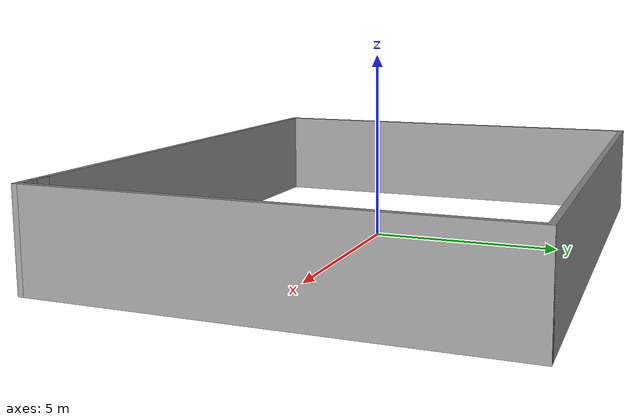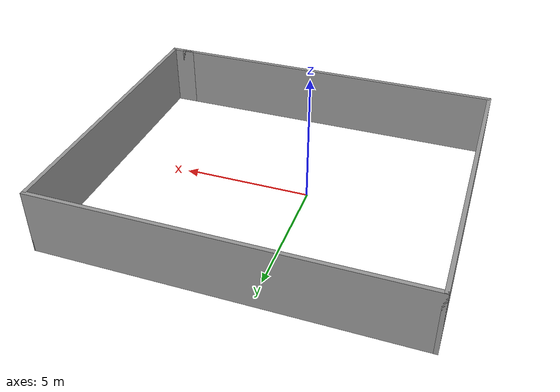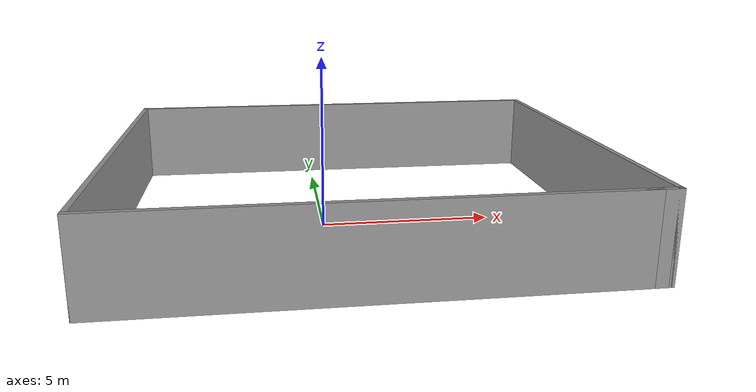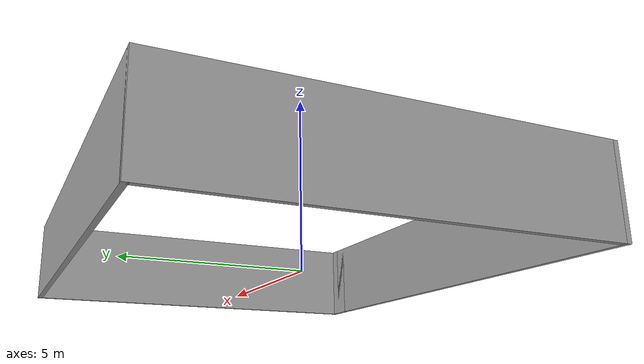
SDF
<?xml version='1.0'?>
<sdf version='1.6'>
  <model name='open'>
    <pose frame=''>1.029 0.3684 0 0 -0 0</pose>
    <link name='Wall_0'>
      <collision name='Wall_0_Collision'>
        <geometry>
          <box>
            <size>13.5 0.15 2.5</size>
          </box>
        </geometry>
        <pose frame=''>0 0 1.25 0 -0 0</pose>
      </collision>
      <visual name='Wall_0_Visual'>
        <pose frame=''>0 0 1.25 0 -0 0</pose>
        <geometry>
          <box>
            <size>13.5 0.15 2.5</size>
          </box>
        </geometry>
        <material>
          <script>
            <uri>file://media/materials/scripts/gazebo.material</uri>
            <name>Gazebo/Grey</name>
          </script>
          <ambient>1 1 1 1</ambient>
        </material>
      </visual>
      <pose frame=''>-0.25 -5.675 0 0 -0 0</pose>
    </link>
    <link name='Wall_2'>
      <collision name='Wall_2_Collision'>
        <geometry>
          <box>
            <size>11.5 0.15 2.5</size>
          </box>
        </geometry>
        <pose frame=''>0 0 1.25 0 -0 0</pose>
      </collision>
      <visual name='Wall_2_Visual'>
        <pose frame=''>0 0 1.25 0 -0 0</pose>
        <geometry>
          <box>
            <size>11.5 0.15 2.5</size>
          </box>
        </geometry>
        <material>
          <script>
            <uri>file://media/materials/scripts/gazebo.material</uri>
            <name>Gazebo/Grey</name>
          </script>
          <ambient>1 1 1 1</ambient>
        </material>
      </visual>
      <pose frame=''>-6.925 0 0 0 -0 1.5708</pose>
    </link>
    <link name='Wall_3'>
      <collision name='Wall_3_Collision'>
        <geometry>
          <box>
            <size>14 0.15 2.5</size>
          </box>
        </geometry>
        <pose frame=''>0 0 1.25 0 -0 0</pose>
      </collision>
      <visual name='Wall_3_Visual'>
        <pose frame=''>0 0 1.25 0 -0 0</pose>
        <geometry>
          <box>
            <size>14 0.15 2.5</size>
          </box>
        </geometry>
        <material>
          <script>
            <uri>file://media/materials/scripts/gazebo.material</uri>
            <name>Gazebo/Grey</name>
          </script>
          <ambient>1 1 1 1</ambient>
        </material>
      </visual>
      <pose frame=''>0 5.675 0 0 -0 0</pose>
    </link>
    <link name='Wall_4'>
      <collision name='Wall_4_Collision'>
        <geometry>
          <box>
            <size>11.5 0.15 2.5</size>
          </box>
        </geometry>
        <pose frame=''>0 0 1.25 0 -0 0</pose>
      </collision>
      <visual name='Wall_4_Visual'>
        <pose frame=''>0 0 1.25 0 -0 0</pose>
        <geometry>
          <box>
            <size>11.5 0.15 2.5</size>
          </box>
        </geometry>
        <material>
          <script>
            <uri>file://media/materials/scripts/gazebo.material</uri>
            <name>Gazebo/Grey</name>
          </script>
          <ambient>1 1 1 1</ambient>
        </material>
      </visual>
      <pose frame=''>6.925 0 0 0 0 -1.5708</pose>
    </link>
    <link name='Wall_5'>
      <collision name='Wall_5_Collision'>
        <geometry>
          <box>
            <size>1 0.15 2.5</size>
          </box>
        </geometry>
        <pose frame=''>0 0 1.25 0 -0 0</pose>
      </collision>
      <visual name='Wall_5_Visual'>
        <pose frame=''>0 0 1.25 0 -0 0</pose>
        <geometry>
          <box>
            <size>1 0.15 2.5</size>
          </box>
        </geometry>
        <material>
          <script>
            <uri>file://media/materials/scripts/gazebo.material</uri>
            <name>Gazebo/Grey</name>
          </script>
          <ambient>1 1 1 1</ambient>
        </material>
      </visual>
      <pose frame=''>6.5 -5.675 0 0 -0 3.14159</pose>
    </link>
    <static>1</static>
  </model>
</sdf>
